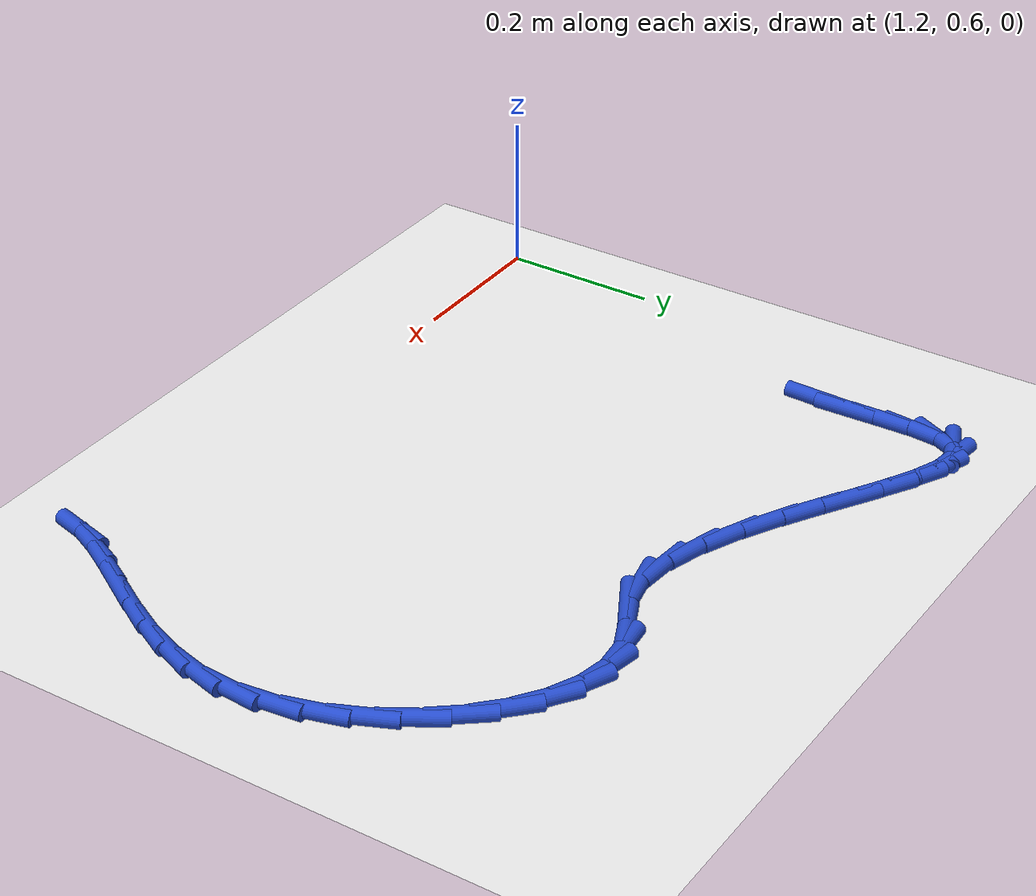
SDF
<sdf version="1.6">
 <world name="default">
  <model name="ground_plane">
   <static>1</static>
   <link name="link">
    <collision name="collision">
     <geometry><plane><normal>0 0 1</normal><size>100 100</size></plane></geometry>
     <surface><friction><ode><mu>100</mu><mu2>50</mu2></ode></friction></surface>
    </collision>
    <visual name="visual">
     <cast_shadows>0</cast_shadows>
     <geometry><plane><normal>0 0 1</normal><size>100 100</size></plane></geometry>
     <material>
      <script><uri>file://media/materials/scripts/gazebo.material</uri><name>Gazebo/WhiteGlow</name></script>
     </material>
    </visual>
   </link>
  </model>
  <model name="line">
   <link name="link_55">
    <pose>1.3128768254789365 1.1154655810520033 0.01 0 1.57 1.5326426162205966</pose>
    <collision name="collision">
     <geometry><cylinder><radius>0.01</radius><length>0.08</length></cylinder></geometry>
    </collision>
    <visual name="visual">
     <material>
      <script><name>Gazebo/Blue</name><uri>file://media/materials/scripts/gazebo.material</uri></script>
     </material>
     <geometry><cylinder><radius>0.01</radius><length>0.08</length></cylinder></geometry>
    </visual>
   </link>
   <link name="link_56">
    <pose>1.3144946599905916 1.1578480749392313 0.01 0 1.57 -1.5421658577141115</pose>
    <collision name="collision">
     <geometry><cylinder><radius>0.01</radius><length>0.08</length></cylinder></geometry>
    </collision>
    <visual name="visual">
     <material>
      <script><name>Gazebo/Blue</name><uri>file://media/materials/scripts/gazebo.material</uri></script>
     </material>
     <geometry><cylinder><radius>0.01</radius><length>0.08</length></cylinder></geometry>
    </visual>
   </link>
   <link name="link_57">
    <pose>1.3131752894376507 1.2039182260027659 0.01 0 1.57 -1.5554471945693393</pose>
    <collision name="collision">
     <geometry><cylinder><radius>0.01</radius><length>0.08</length></cylinder></geometry>
    </collision>
    <visual name="visual">
     <material>
      <script><name>Gazebo/Blue</name><uri>file://media/materials/scripts/gazebo.material</uri></script>
     </material>
     <geometry><cylinder><radius>0.01</radius><length>0.08</length></cylinder></geometry>
    </visual>
   </link>
   <link name="link_58">
    <pose>1.312499966122735 1.2479122622583971 0.01 0 1.57 1.4729200648623804</pose>
    <collision name="collision">
     <geometry><cylinder><radius>0.01</radius><length>0.08</length></cylinder></geometry>
    </collision>
    <visual name="visual">
     <material>
      <script><name>Gazebo/Blue</name><uri>file://media/materials/scripts/gazebo.material</uri></script>
     </material>
     <geometry><cylinder><radius>0.01</radius><length>0.08</length></cylinder></geometry>
    </visual>
   </link>
   <link name="link_59">
    <pose>1.3160499423484682 1.2840664117219176 0.01 0 1.57 1.115177989552686</pose>
    <collision name="collision">
     <geometry><cylinder><radius>0.01</radius><length>0.08</length></cylinder></geometry>
    </collision>
    <visual name="visual">
     <material>
      <script><name>Gazebo/Blue</name><uri>file://media/materials/scripts/gazebo.material</uri></script>
     </material>
     <geometry><cylinder><radius>0.01</radius><length>0.08</length></cylinder></geometry>
    </visual>
   </link>
   <link name="link_60">
    <pose>1.3272408211976918 1.3069047848491755 0.01 0 1.57 0.40402020106702413</pose>
    <collision name="collision">
     <geometry><cylinder><radius>0.01</radius><length>0.08</length></cylinder></geometry>
    </collision>
    <visual name="visual">
     <material>
      <script><name>Gazebo/Blue</name><uri>file://media/materials/scripts/gazebo.material</uri></script>
     </material>
     <geometry><cylinder><radius>0.01</radius><length>0.08</length></cylinder></geometry>
    </visual>
   </link>
   <link name="link_61">
    <pose>1.3469645005195718 1.3153374494921228 0.01 0 1.57 -0.13333971773925576</pose>
    <collision name="collision">
     <geometry><cylinder><radius>0.01</radius><length>0.08</length></cylinder></geometry>
    </collision>
    <visual name="visual">
     <material>
      <script><name>Gazebo/Blue</name><uri>file://media/materials/scripts/gazebo.material</uri></script>
     </material>
     <geometry><cylinder><radius>0.01</radius><length>0.08</length></cylinder></geometry>
    </visual>
   </link>
   <link name="link_62">
    <pose>1.374146795988078 1.3116913355603654 0.01 0 1.57 -0.37797741302061216</pose>
    <collision name="collision">
     <geometry><cylinder><radius>0.01</radius><length>0.08</length></cylinder></geometry>
    </collision>
    <visual name="visual">
     <material>
      <script><name>Gazebo/Blue</name><uri>file://media/materials/scripts/gazebo.material</uri></script>
     </material>
     <geometry><cylinder><radius>0.01</radius><length>0.08</length></cylinder></geometry>
    </visual>
   </link>
   <link name="link_63">
    <pose>1.4076615827370627 1.2983836406354397 0.01 0 1.57 -0.487960572976232</pose>
    <collision name="collision">
     <geometry><cylinder><radius>0.01</radius><length>0.08</length></cylinder></geometry>
    </collision>
    <visual name="visual">
     <material>
      <script><name>Gazebo/Blue</name><uri>file://media/materials/scripts/gazebo.material</uri></script>
     </material>
     <geometry><cylinder><radius>0.01</radius><length>0.08</length></cylinder></geometry>
    </visual>
   </link>
   <link name="link_64">
    <pose>1.4463827359003765 1.2778315622988832 0.01 0 1.57 -0.535222612706178</pose>
    <collision name="collision">
     <geometry><cylinder><radius>0.01</radius><length>0.08</length></cylinder></geometry>
    </collision>
    <visual name="visual">
     <material>
      <script><name>Gazebo/Blue</name><uri>file://media/materials/scripts/gazebo.material</uri></script>
     </material>
     <geometry><cylinder><radius>0.01</radius><length>0.08</length></cylinder></geometry>
    </visual>
   </link>
   <link name="link_65">
    <pose>1.4891841306118727 1.2524522981322326 0.01 0 1.57 -0.5458006852685703</pose>
    <collision name="collision">
     <geometry><cylinder><radius>0.01</radius><length>0.08</length></cylinder></geometry>
    </collision>
    <visual name="visual">
     <material>
      <script><name>Gazebo/Blue</name><uri>file://media/materials/scripts/gazebo.material</uri></script>
     </material>
     <geometry><cylinder><radius>0.01</radius><length>0.08</length></cylinder></geometry>
    </visual>
   </link>
   <link name="link_66">
    <pose>1.5349396420054042 1.2246630457170244 0.01 0 1.57 -0.5284663540800525</pose>
    <collision name="collision">
     <geometry><cylinder><radius>0.01</radius><length>0.08</length></cylinder></geometry>
    </collision>
    <visual name="visual">
     <material>
      <script><name>Gazebo/Blue</name><uri>file://media/materials/scripts/gazebo.material</uri></script>
     </material>
     <geometry><cylinder><radius>0.01</radius><length>0.08</length></cylinder></geometry>
    </visual>
   </link>
   <link name="link_67">
    <pose>1.5825231452148214 1.1968810026347971 0.01 0 1.57 -0.48357390207894746</pose>
    <collision name="collision">
     <geometry><cylinder><radius>0.01</radius><length>0.08</length></cylinder></geometry>
    </collision>
    <visual name="visual">
     <material>
      <script><name>Gazebo/Blue</name><uri>file://media/materials/scripts/gazebo.material</uri></script>
     </material>
     <geometry><cylinder><radius>0.01</radius><length>0.08</length></cylinder></geometry>
    </visual>
   </link>
   <link name="link_68">
    <pose>1.6308085153739782 1.1715233664670863 0.01 0 1.57 -0.4049646222156277</pose>
    <collision name="collision">
     <geometry><cylinder><radius>0.01</radius><length>0.08</length></cylinder></geometry>
    </collision>
    <visual name="visual">
     <material>
      <script><name>Gazebo/Blue</name><uri>file://media/materials/scripts/gazebo.material</uri></script>
     </material>
     <geometry><cylinder><radius>0.01</radius><length>0.08</length></cylinder></geometry>
    </visual>
   </link>
   <link name="link_69">
    <pose>1.678669627616725 1.15100733479543 0.01 0 1.57 -0.2788105046080815</pose>
    <collision name="collision">
     <geometry><cylinder><radius>0.01</radius><length>0.08</length></cylinder></geometry>
    </collision>
    <visual name="visual">
     <material>
      <script><name>Gazebo/Blue</name><uri>file://media/materials/scripts/gazebo.material</uri></script>
     </material>
     <geometry><cylinder><radius>0.01</radius><length>0.08</length></cylinder></geometry>
    </visual>
   </link>
   <link name="link_70">
    <pose>1.724980357076915 1.137750105201364 0.01 0 1.57 -0.08189033585099399</pose>
    <collision name="collision">
     <geometry><cylinder><radius>0.01</radius><length>0.08</length></cylinder></geometry>
    </collision>
    <visual name="visual">
     <material>
      <script><name>Gazebo/Blue</name><uri>file://media/materials/scripts/gazebo.material</uri></script>
     </material>
     <geometry><cylinder><radius>0.01</radius><length>0.08</length></cylinder></geometry>
    </visual>
   </link>
   <link name="link_71">
    <pose>1.7686145788883993 1.1341688752664263 0.01 0 1.57 0.21053222582493344</pose>
    <collision name="collision">
     <geometry><cylinder><radius>0.01</radius><length>0.08</length></cylinder></geometry>
    </collision>
    <visual name="visual">
     <material>
      <script><name>Gazebo/Blue</name><uri>file://media/materials/scripts/gazebo.material</uri></script>
     </material>
     <geometry><cylinder><radius>0.01</radius><length>0.08</length></cylinder></geometry>
    </visual>
   </link>
   <link name="link_72">
    <pose>1.8084461681850321 1.142680842572154 0.01 0 1.57 0.5015818451993034</pose>
    <collision name="collision">
     <geometry><cylinder><radius>0.01</radius><length>0.08</length></cylinder></geometry>
    </collision>
    <visual name="visual">
     <material>
      <script><name>Gazebo/Blue</name><uri>file://media/materials/scripts/gazebo.material</uri></script>
     </material>
     <geometry><cylinder><radius>0.01</radius><length>0.08</length></cylinder></geometry>
    </visual>
   </link>
   <link name="link_73">
    <pose>1.8443363856615276 1.1623615379575905 0.01 0 1.57 0.42926095401109354</pose>
    <collision name="collision">
     <geometry><cylinder><radius>0.01</radius><length>0.08</length></cylinder></geometry>
    </collision>
    <visual name="visual">
     <material>
      <script><name>Gazebo/Blue</name><uri>file://media/materials/scripts/gazebo.material</uri></script>
     </material>
     <geometry><cylinder><radius>0.01</radius><length>0.08</length></cylinder></geometry>
    </visual>
   </link>
   <link name="link_74">
    <pose>1.8801407262592675 1.1787501454397649 0.01 0 1.57 0.10622360502540779</pose>
    <collision name="collision">
     <geometry><cylinder><radius>0.01</radius><length>0.08</length></cylinder></geometry>
    </collision>
    <visual name="visual">
     <material>
      <script><name>Gazebo/Blue</name><uri>file://media/materials/scripts/gazebo.material</uri></script>
     </material>
     <geometry><cylinder><radius>0.01</radius><length>0.08</length></cylinder></geometry>
    </visual>
   </link>
   <link name="link_75">
    <pose>1.9179684924167302 1.1827835287200614 0.01 0 1.57 -0.18916336632344954</pose>
    <collision name="collision">
     <geometry><cylinder><radius>0.01</radius><length>0.08</length></cylinder></geometry>
    </collision>
    <visual name="visual">
     <material>
      <script><name>Gazebo/Blue</name><uri>file://media/materials/scripts/gazebo.material</uri></script>
     </material>
     <geometry><cylinder><radius>0.01</radius><length>0.08</length></cylinder></geometry>
    </visual>
   </link>
   <link name="link_76">
    <pose>1.956822713001509 1.1753447949877114 0.01 0 1.57 -0.42472524529714856</pose>
    <collision name="collision">
     <geometry><cylinder><radius>0.01</radius><length>0.08</length></cylinder></geometry>
    </collision>
    <visual name="visual">
     <material>
      <script><name>Gazebo/Blue</name><uri>file://media/materials/scripts/gazebo.material</uri></script>
     </material>
     <geometry><cylinder><radius>0.01</radius><length>0.08</length></cylinder></geometry>
    </visual>
   </link>
   <link name="link_77">
    <pose>1.9955454905769652 1.1578323351704387 0.01 0 1.57 -0.6104460209559734</pose>
    <collision name="collision">
     <geometry><cylinder><radius>0.01</radius><length>0.08</length></cylinder></geometry>
    </collision>
    <visual name="visual">
     <material>
      <script><name>Gazebo/Blue</name><uri>file://media/materials/scripts/gazebo.material</uri></script>
     </material>
     <geometry><cylinder><radius>0.01</radius><length>0.08</length></cylinder></geometry>
    </visual>
   </link>
   <link name="link_78">
    <pose>2.032978927706464 1.131644540195969 0.01 0 1.57 -0.7631748075532377</pose>
    <collision name="collision">
     <geometry><cylinder><radius>0.01</radius><length>0.08</length></cylinder></geometry>
    </collision>
    <visual name="visual">
     <material>
      <script><name>Gazebo/Blue</name><uri>file://media/materials/scripts/gazebo.material</uri></script>
     </material>
     <geometry><cylinder><radius>0.01</radius><length>0.08</length></cylinder></geometry>
    </visual>
   </link>
   <link name="link_79">
    <pose>2.067965126953366 1.0981798009920276 0.01 0 1.57 -0.8975072496808627</pose>
    <collision name="collision">
     <geometry><cylinder><radius>0.01</radius><length>0.08</length></cylinder></geometry>
    </collision>
    <visual name="visual">
     <material>
      <script><name>Gazebo/Blue</name><uri>file://media/materials/scripts/gazebo.material</uri></script>
     </material>
     <geometry><cylinder><radius>0.01</radius><length>0.08</length></cylinder></geometry>
    </visual>
   </link>
   <link name="link_80">
    <pose>2.099346190881036 1.0588365084863385 0.01 0 1.57 -1.024958998781677</pose>
    <collision name="collision">
     <geometry><cylinder><radius>0.01</radius><length>0.08</length></cylinder></geometry>
    </collision>
    <visual name="visual">
     <material>
      <script><name>Gazebo/Blue</name><uri>file://media/materials/scripts/gazebo.material</uri></script>
     </material>
     <geometry><cylinder><radius>0.01</radius><length>0.08</length></cylinder></geometry>
    </visual>
   </link>
   <link name="link_81">
    <pose>2.1259642220528363 1.0150130536066277 0.01 0 1.57 -1.1552396517040884</pose>
    <collision name="collision">
     <geometry><cylinder><radius>0.01</radius><length>0.08</length></cylinder></geometry>
    </collision>
    <visual name="visual">
     <material>
      <script><name>Gazebo/Blue</name><uri>file://media/materials/scripts/gazebo.material</uri></script>
     </material>
     <geometry><cylinder><radius>0.01</radius><length>0.08</length></cylinder></geometry>
    </visual>
   </link>
   <link name="link_82">
    <pose>2.146661323032129 0.9681078272806198 0.01 0 1.57 -1.2975306964069067</pose>
    <collision name="collision">
     <geometry><cylinder><radius>0.01</radius><length>0.08</length></cylinder></geometry>
    </collision>
    <visual name="visual">
     <material>
      <script><name>Gazebo/Blue</name><uri>file://media/materials/scripts/gazebo.material</uri></script>
     </material>
     <geometry><cylinder><radius>0.01</radius><length>0.08</length></cylinder></geometry>
    </visual>
   </link>
   <link name="link_83">
    <pose>2.1602795963822787 0.9195192204360397 0.01 0 1.57 -1.4611265682615995</pose>
    <collision name="collision">
     <geometry><cylinder><radius>0.01</radius><length>0.08</length></cylinder></geometry>
    </collision>
    <visual name="visual">
     <material>
      <script><name>Gazebo/Blue</name><uri>file://media/materials/scripts/gazebo.material</uri></script>
     </material>
     <geometry><cylinder><radius>0.01</radius><length>0.08</length></cylinder></geometry>
    </visual>
   </link>
   <link name="link_84">
    <pose>2.1656611446666476 0.8706456240006132 0.01 0 1.57 1.4909112903726147</pose>
    <collision name="collision">
     <geometry><cylinder><radius>0.01</radius><length>0.08</length></cylinder></geometry>
    </collision>
    <visual name="visual">
     <material>
      <script><name>Gazebo/Blue</name><uri>file://media/materials/scripts/gazebo.material</uri></script>
     </material>
     <geometry><cylinder><radius>0.01</radius><length>0.08</length></cylinder></geometry>
    </visual>
   </link>
   <link name="link_85">
    <pose>2.161832407818594 0.8228195349266856 0.01 0 1.57 1.3156269300876033</pose>
    <collision name="collision">
     <geometry><cylinder><radius>0.01</radius><length>0.08</length></cylinder></geometry>
    </collision>
    <visual name="visual">
     <material>
      <script><name>Gazebo/Blue</name><uri>file://media/materials/scripts/gazebo.material</uri></script>
     </material>
     <geometry><cylinder><radius>0.01</radius><length>0.08</length></cylinder></geometry>
    </visual>
   </link>
   <link name="link_86">
    <pose>2.149793499908995 0.7766679326959685 0.01 0 1.57 1.1836804331267596</pose>
    <collision name="collision">
     <geometry><cylinder><radius>0.01</radius><length>0.08</length></cylinder></geometry>
    </collision>
    <visual name="visual">
     <material>
      <script><name>Gazebo/Blue</name><uri>file://media/materials/scripts/gazebo.material</uri></script>
     </material>
     <geometry><cylinder><radius>0.01</radius><length>0.08</length></cylinder></geometry>
    </visual>
   </link>
   <link name="link_87">
    <pose>2.1317418584526027 0.732389796751261 0.01 0 1.57 1.0931426278462735</pose>
    <collision name="collision">
     <geometry><cylinder><radius>0.01</radius><length>0.08</length></cylinder></geometry>
    </collision>
    <visual name="visual">
     <material>
      <script><name>Gazebo/Blue</name><uri>file://media/materials/scripts/gazebo.material</uri></script>
     </material>
     <geometry><cylinder><radius>0.01</radius><length>0.08</length></cylinder></geometry>
    </visual>
   </link>
   <link name="link_88">
    <pose>2.1098917232688565 0.6901781003161623 0.01 0 1.57 1.0403182158706692</pose>
    <collision name="collision">
     <geometry><cylinder><radius>0.01</radius><length>0.08</length></cylinder></geometry>
    </collision>
    <visual name="visual">
     <material>
      <script><name>Gazebo/Blue</name><uri>file://media/materials/scripts/gazebo.material</uri></script>
     </material>
     <geometry><cylinder><radius>0.01</radius><length>0.08</length></cylinder></geometry>
    </visual>
   </link>
   <link name="link_89">
    <pose>2.0864573341771933 0.6502258166142688 0.01 0 1.57 1.024428295170089</pose>
    <collision name="collision">
     <geometry><cylinder><radius>0.01</radius><length>0.08</length></cylinder></geometry>
    </collision>
    <visual name="visual">
     <material>
      <script><name>Gazebo/Blue</name><uri>file://media/materials/scripts/gazebo.material</uri></script>
     </material>
     <geometry><cylinder><radius>0.01</radius><length>0.08</length></cylinder></geometry>
    </visual>
   </link>
   <link name="link_90">
    <pose>2.0636529309970535 0.612725918869179 0.01 0 1.57 1.050714243565556</pose>
    <collision name="collision">
     <geometry><cylinder><radius>0.01</radius><length>0.08</length></cylinder></geometry>
    </collision>
    <visual name="visual">
     <material>
      <script><name>Gazebo/Blue</name><uri>file://media/materials/scripts/gazebo.material</uri></script>
     </material>
     <geometry><cylinder><radius>0.01</radius><length>0.08</length></cylinder></geometry>
    </visual>
   </link>
   <link name="link_91">
    <pose>2.0436927535478753 0.5778713803044897 0.01 0 1.57 1.1351746572585304</pose>
    <collision name="collision">
     <geometry><cylinder><radius>0.01</radius><length>0.08</length></cylinder></geometry>
    </collision>
    <visual name="visual">
     <material>
      <script><name>Gazebo/Blue</name><uri>file://media/materials/scripts/gazebo.material</uri></script>
     </material>
     <geometry><cylinder><radius>0.01</radius><length>0.08</length></cylinder></geometry>
    </visual>
   </link>
   <link name="link_92">
    <pose>2.028791041649098 0.5458551741437997 0.01 0 1.57 1.3134274033391198</pose>
    <collision name="collision">
     <geometry><cylinder><radius>0.01</radius><length>0.08</length></cylinder></geometry>
    </collision>
    <visual name="visual">
     <material>
      <script><name>Gazebo/Blue</name><uri>file://media/materials/scripts/gazebo.material</uri></script>
     </material>
     <geometry><cylinder><radius>0.01</radius><length>0.08</length></cylinder></geometry>
    </visual>
   </link>
  </model>
 </world>
</sdf>
